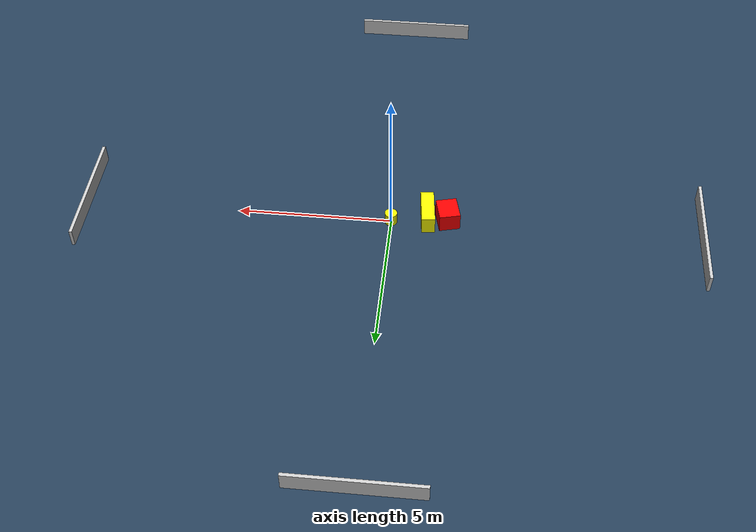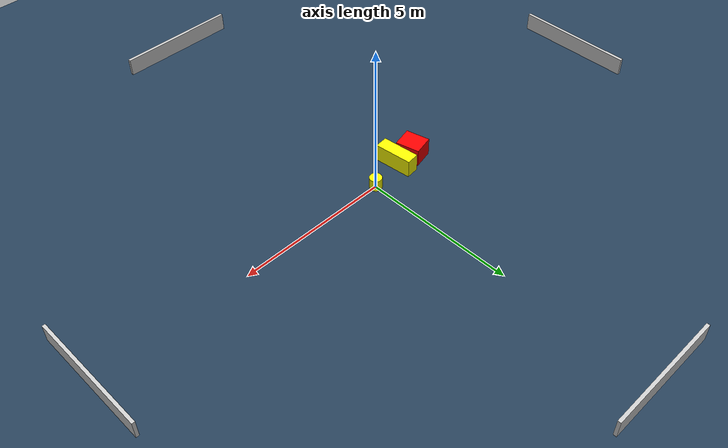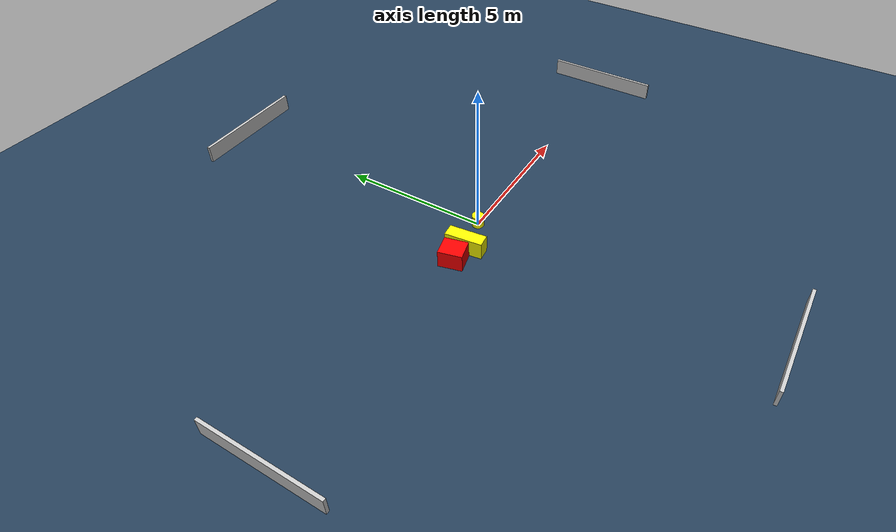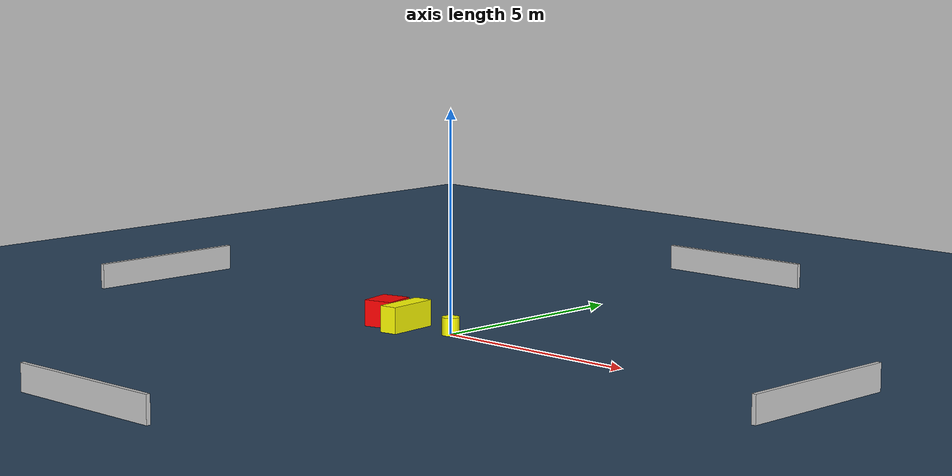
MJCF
<?xml version="1.0" ?>
<mujoco model="generated_environment">
  <option timestep="0.01" integrator="RK4" cone="elliptic"/>
  <default>
    <geom density="1"/>
  </default>
  <asset>
    <texture builtin="gradient" height="3072" name="skybox" rgb1="0.3 0.5 0.7" rgb2="0 0 0" type="skybox" width="512"/>
    <texture builtin="checker" height="300" name="groundplane" rgb1="0.2 0.3 0.4" rgb2="0.1 0.2 0.3" type="2d" width="300"/>
    <material name="groundplane" reflectance="0.2" texrepeat="5 5" texture="groundplane"/>
  </asset>
  <worldbody>
    <light dir="0 0 -1" directional="true" pos="0 0 1.5"/>
    <geom condim="3" friction="0.5 0.005 0.001" material="groundplane" name="floor" pos="0 0 0" size="0 0 0.05" type="plane"/>
    <body name="walls">
      <geom name="wall_1" condim="4" pos="-10.0 0.0 0.3" rgba="0.800000011920929 0.800000011920929 0.800000011920929 1.0" size="0.05 2.0 0.3" type="box"/>
      <geom name="wall_2" condim="4" pos="10.0 0.0 0.3" rgba="0.800000011920929 0.800000011920929 0.800000011920929 1.0" size="0.05 2.0 0.3" type="box"/>
      <geom name="wall_3" condim="4" pos="0.0 -10.0 0.3" rgba="0.800000011920929 0.800000011920929 0.800000011920929 1.0" size="2.0 0.05 0.3" type="box"/>
      <geom name="wall_4" condim="4" pos="0.0 10.0 0.3" rgba="0.800000011920929 0.800000011920929 0.800000011920929 1.0" size="2.0 0.05 0.3" type="box"/>
    </body>
    <body name="robot">
      <joint name="joint_x" type="slide" pos="0 0 0" axis="1 0 0"/>
      <joint name="joint_y" type="slide" pos="0 0 0" axis="0 1 0"/>
      <geom name="robot" type="cylinder" pos="0.0 0.0 0.2" size="0.2 0.2 0.0" mass="5.0" friction="1.0 0.005 0.0001" condim="4" rgba="1.0 1.0 0.0 1.0"/>
    </body>
    <body name="obstacle_1_movable">
      <geom name="obstacle_1_movable" condim="4" pos="-1.170519419476433 -0.2500859140147609 0.3" euler="0 0 186.12474228282912" friction="0.0 0.005 0.001" rgba="1.0 1.0 0.0 1.0" size="0.21448649923719232 0.6225938499429295 0.3" type="box" mass="0.1"/>
      <joint type="free"/>
    </body>
    <body name="obstacle_2_static">
      <geom name="obstacle_2_static" condim="4" pos="-1.8273176252321657 -0.20190883994475584 0.3" euler="0 0 103.60965604895479" friction="0.0 0.005 0.001" rgba="1.0 0.0 0.0 1.0" size="0.3947402527225652 0.33772593450818605 0.3" type="box"/>
    </body>
  </worldbody>
  <actuator>
    <motor name="actuator_x" joint="joint_x" gear="1" ctrlrange="-1 1"/>
    <motor name="actuator_y" joint="joint_y" gear="1" ctrlrange="-1 1"/>
  </actuator>
</mujoco>
